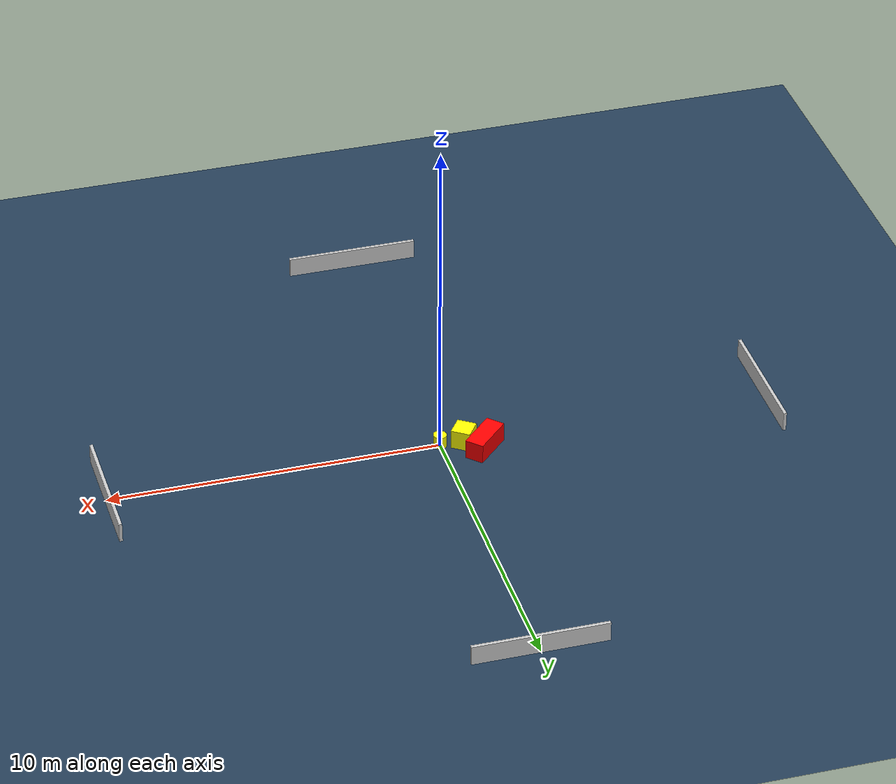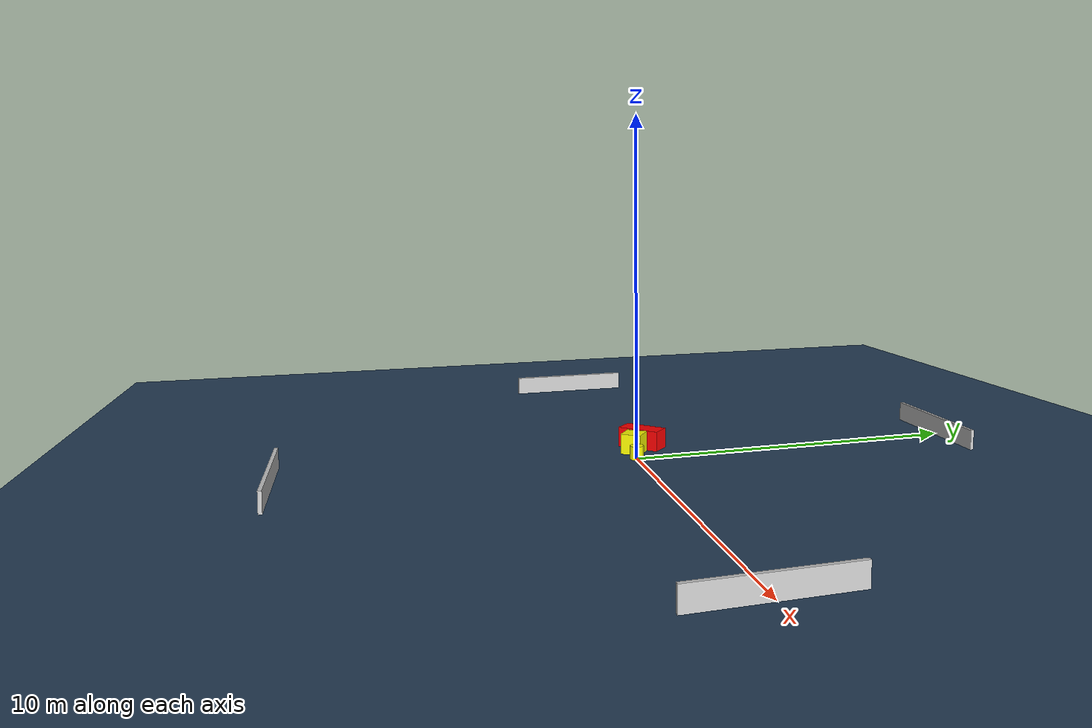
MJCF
<?xml version="1.0" ?>
<mujoco model="generated_environment">
  <option timestep="0.01" integrator="RK4" cone="elliptic"/>
  <default>
    <geom density="1"/>
  </default>
  <asset>
    <texture builtin="gradient" height="3072" name="skybox" rgb1="0.3 0.5 0.7" rgb2="0 0 0" type="skybox" width="512"/>
    <texture builtin="checker" height="300" name="groundplane" rgb1="0.2 0.3 0.4" rgb2="0.1 0.2 0.3" type="2d" width="300"/>
    <material name="groundplane" reflectance="0.2" texrepeat="5 5" texture="groundplane"/>
  </asset>
  <worldbody>
    <light dir="0 0 -1" directional="true" pos="0 0 1.5"/>
    <geom condim="3" friction="0.5 0.005 0.001" material="groundplane" name="floor" pos="0 0 0" size="0 0 0.05" type="plane"/>
    <body name="walls">
      <geom name="wall_1" condim="4" pos="-10.0 0.0 0.3" rgba="0.800000011920929 0.800000011920929 0.800000011920929 1.0" size="0.05 2.0 0.3" type="box"/>
      <geom name="wall_2" condim="4" pos="10.0 0.0 0.3" rgba="0.800000011920929 0.800000011920929 0.800000011920929 1.0" size="0.05 2.0 0.3" type="box"/>
      <geom name="wall_3" condim="4" pos="0.0 -10.0 0.3" rgba="0.800000011920929 0.800000011920929 0.800000011920929 1.0" size="2.0 0.05 0.3" type="box"/>
      <geom name="wall_4" condim="4" pos="0.0 10.0 0.3" rgba="0.800000011920929 0.800000011920929 0.800000011920929 1.0" size="2.0 0.05 0.3" type="box"/>
    </body>
    <body name="robot">
      <joint name="joint_x" type="slide" pos="0 0 0" axis="1 0 0"/>
      <joint name="joint_y" type="slide" pos="0 0 0" axis="0 1 0"/>
      <geom name="robot" type="cylinder" pos="0.0 0.0 0.2" size="0.2 0.2 0.0" mass="5.0" friction="1.0 0.005 0.0001" condim="4" rgba="1.0 1.0 0.0 1.0"/>
    </body>
    <body name="obstacle_1_movable">
      <geom name="obstacle_1_movable" condim="4" pos="-0.6935305013383268 0.10067896809403985 0.3" euler="0 0 324.4389792843335" friction="0.0 0.005 0.001" rgba="1.0 1.0 0.0 1.0" size="0.2922636374078364 0.3077482787988254 0.3" type="box" mass="0.1"/>
      <joint type="free"/>
    </body>
    <body name="obstacle_2_static">
      <geom name="obstacle_2_static" condim="4" pos="-1.218851624228847 0.502906881145447 0.3" euler="0 0 45.210447211145215" friction="0.0 0.005 0.001" rgba="1.0 0.0 0.0 1.0" size="0.6594776186011642 0.28661580768060835 0.3" type="box"/>
    </body>
  </worldbody>
  <actuator>
    <motor name="actuator_x" joint="joint_x" gear="1" ctrlrange="-1 1"/>
    <motor name="actuator_y" joint="joint_y" gear="1" ctrlrange="-1 1"/>
  </actuator>
</mujoco>
